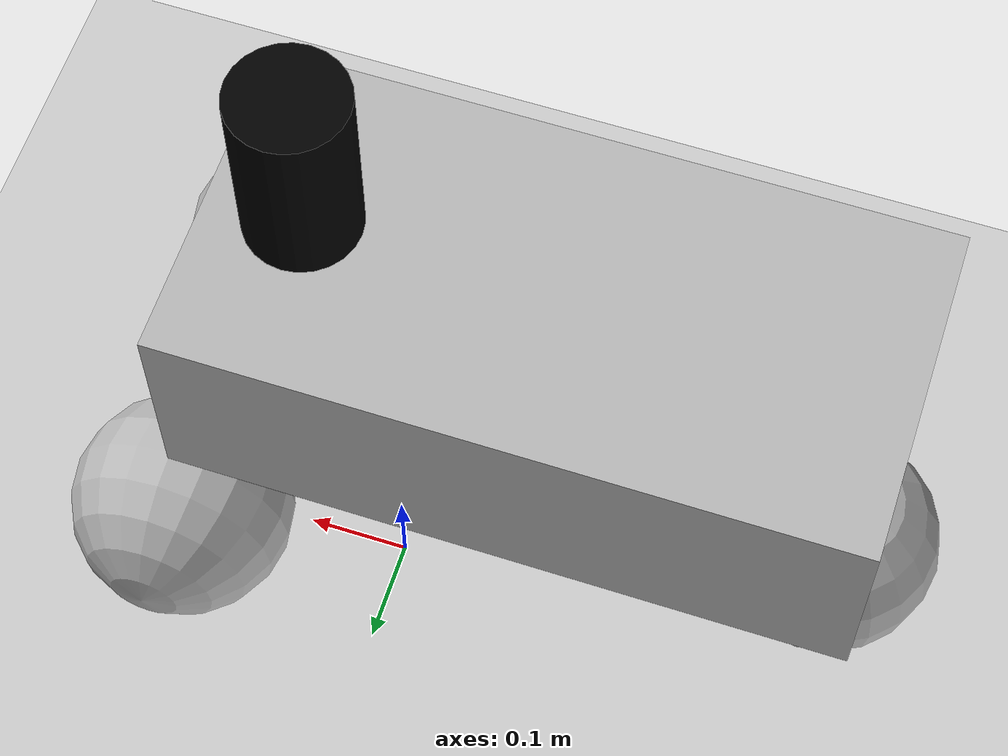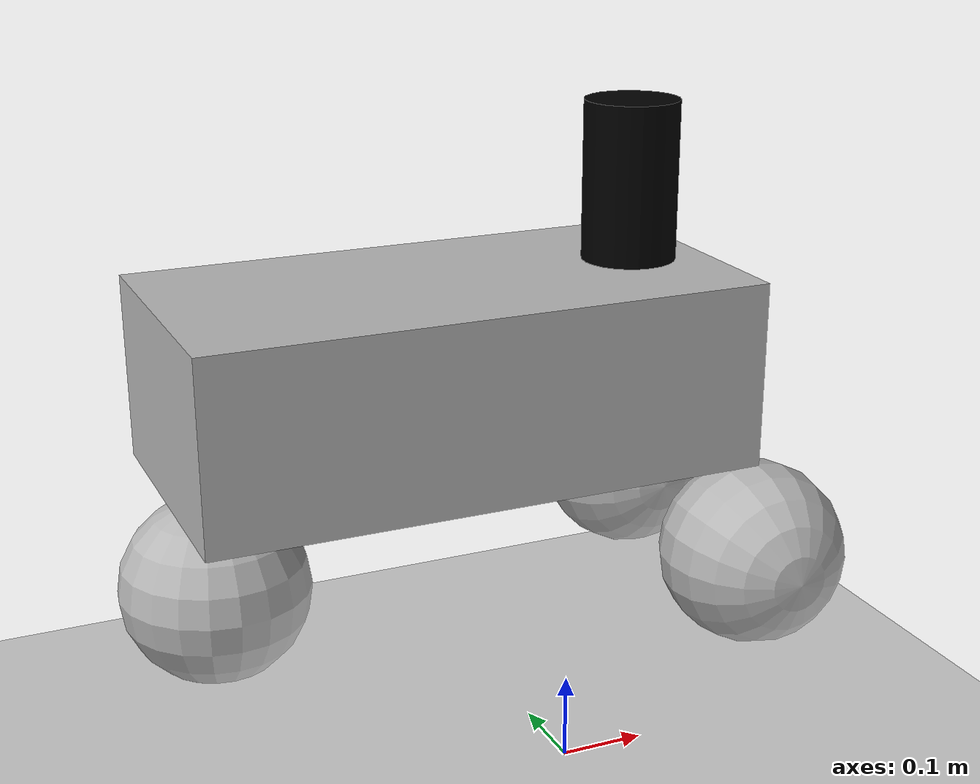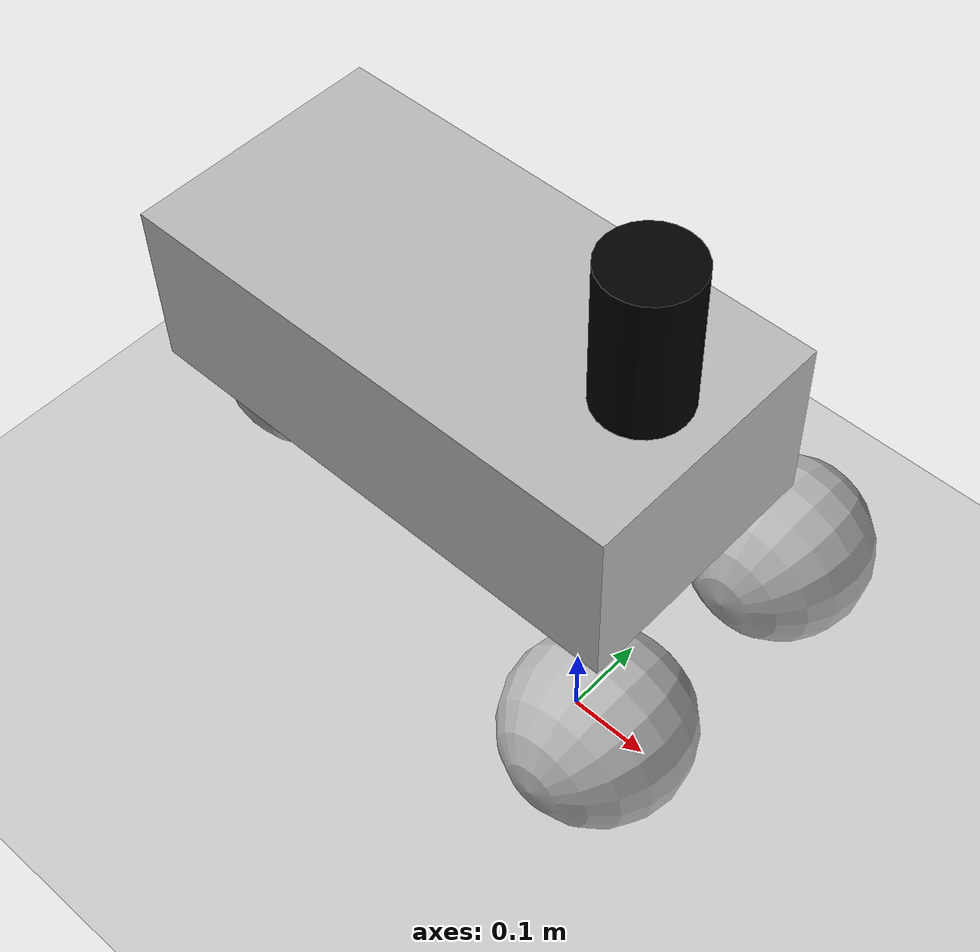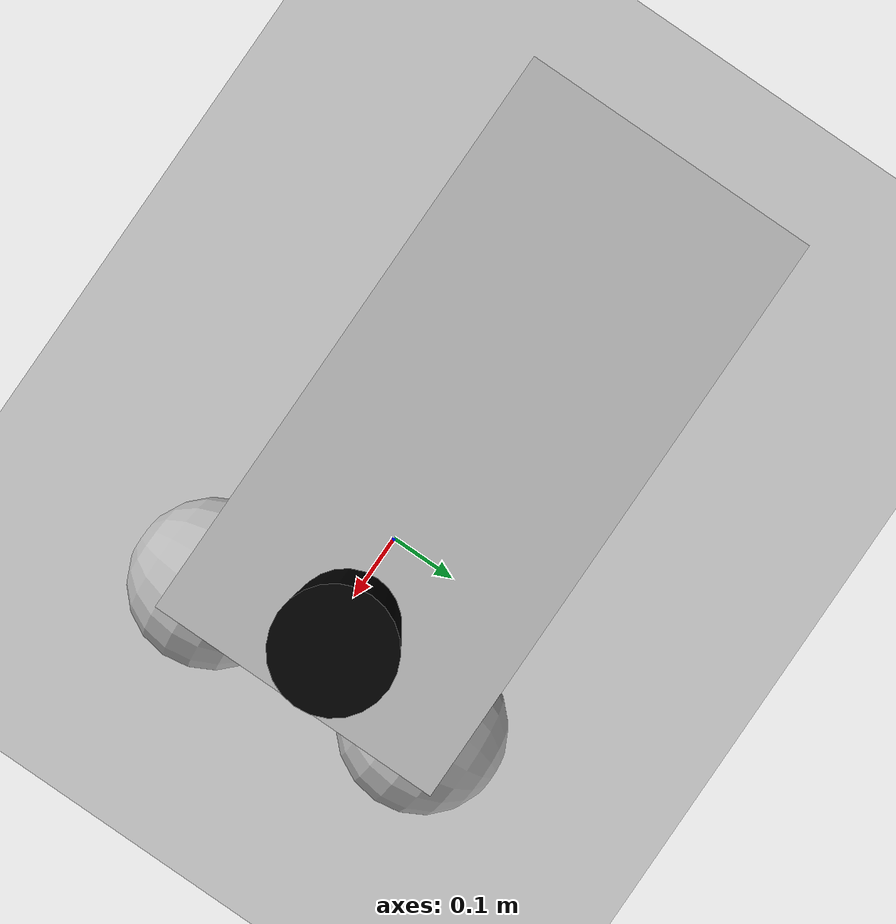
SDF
<?xml version="1.0"?>
<sdf version="1.6">
  <world name="default">

    <include>
      <uri>model://ground_plane</uri>
    </include>

    <include>
      <uri>model://sun</uri>
    </include>

    <model name='vehicle'>
      <link name="lidar_link">
        <inertial>
          <pose>0.065 0 0.355 0 0 0</pose>
          <inertia>
            <ixx>0.001</ixx>
            <ixy>0.000</ixy>
            <ixz>0.000</ixz>
            <iyy>0.001</iyy>
            <iyz>0.000</iyz>
            <izz>0.001</izz>
          </inertia>
          <mass>0.114</mass>
        </inertial>

        <collision name="lidar_collision">
          <pose>0.065 0 0.355 0 0 0</pose>
          <geometry>
            <cylinder>
              <radius>0.0508</radius>
              <length>0.18</length>
            </cylinder>
          </geometry>
        </collision>

        <visual name="lidar_visual">
          <pose>0.065 0 0.355 0 0 0</pose>
          <geometry>
            <cylinder>
              <radius>0.0508</radius>
              <length>0.18</length>
            </cylinder>
          </geometry>
          <material>
            <ambient>0.0 0.0 0.0 1.0</ambient>
            <diffuse>0.0 0.0 0.0 1.0</diffuse>
            <specular>0.0 0.0 0.0 1.0</specular>
            <emissive>0.0 0.0 0.0 1.0</emissive>
          </material>
        </visual>

        <sensor name="lidar" type="ray">
          <pose>0.065 0 0.3215 0 0 0</pose>
          <always_on>true</always_on>
          <visualize>true</visualize>
          <update_rate>5</update_rate>
          <ray>
            <scan>
              <horizontal>
                <samples>360</samples>
                <resolution>1.00000</resolution>
                <min_angle>0.000000</min_angle>
                <max_angle>6.280000</max_angle>
              </horizontal>
            </scan>
            <range>
              <min>0.120000</min>
              <max>3.5</max>
              <resolution>0.015000</resolution>
            </range>
            <noise>
              <type>gaussian</type>
              <mean>0.0</mean>
              <stddev>0.01</stddev>
            </noise>
          </ray>
          <plugin name="scan" filename="libgazebo_ros_ray_sensor.so">
            <ros>
              <remapping>~/out:=scan</remapping>
            </ros>
            <output_type>sensor_msgs/LaserScan</output_type>
            <frame_name>laser</frame_name>
          </plugin>
        </sensor>
      </link>

      <pose>0 0 0.325 0 -0 0</pose>

      <link name='base_link'>
        <pose>-0.151427 -0 0.175 0 -0 0</pose>
        <inertial>
          <mass>1.14395</mass>
          <inertia>
            <ixx>0.126164</ixx>
            <ixy>0</ixy>
            <ixz>0</ixz>
            <iyy>0.416519</iyy>
            <iyz>0</iyz>
            <izz>0.481014</izz>
          </inertia>
        </inertial>
        <visual name='visual'>
          <geometry>
            <box>
              <size>0.6 0.3 0.2</size>
            </box>
          </geometry>
        </visual>
        <collision name='collision'>
          <geometry>
            <box>
              <size>0.6 0.3 0.2</size>
            </box>
          </geometry>
        </collision>
      </link>

      <link name='left_wheel'>
        <pose>0.1482 0.145029 -0.025 -1.5707 0 0</pose>
        <inertial>
          <mass>2</mass>
          <inertia>
            <ixx>0.145833</ixx>
            <ixy>0</ixy>
            <ixz>0</ixz>
            <iyy>0.145833</iyy>
            <iyz>0</iyz>
            <izz>0.125</izz>
          </inertia>
        </inertial>
        <visual name='visual'>
          <geometry>
            <sphere>
              <radius>0.1</radius>
            </sphere>
          </geometry>
        </visual>
        <collision name='collision'>
          <geometry>
            <sphere>
              <radius>0.1</radius>
            </sphere>
          </geometry>
          <surface>
            <friction>
              <ode>
                <mu>1</mu>
                <mu2>1</mu2>
                <slip1>0</slip1>
                <slip2>0</slip2>
              </ode>
            </friction>
            <contact>
              <ode>
                <soft_cfm>0</soft_cfm>
                <soft_erp>0.2</soft_erp>
                <kp>1e+13</kp>
                <kd>1</kd>
                <max_vel>0.01</max_vel>
                <min_depth>0.01</min_depth>
              </ode>
            </contact>
          </surface>
        </collision>
      </link>

      <link name='right_wheel'>
        <pose>0.1482 -0.145029 -0.025 -1.5707 0 0</pose>
        <inertial>
          <mass>2</mass>
          <inertia>
            <ixx>0.145833</ixx>
            <ixy>0</ixy>
            <ixz>0</ixz>
            <iyy>0.145833</iyy>
            <iyz>0</iyz>
            <izz>0.125</izz>
          </inertia>
        </inertial>
        <visual name='visual'>
          <geometry>
            <sphere>
              <radius>0.1</radius>
            </sphere>
          </geometry>
        </visual>
        <collision name='collision'>
          <geometry>
            <sphere>
              <radius>0.1</radius>
            </sphere>
          </geometry>
          <surface>
            <friction>
              <ode>
                <mu>1</mu>
                <mu2>1</mu2>
                <slip1>0</slip1>
                <slip2>0</slip2>
              </ode>
            </friction>
            <contact>
              <ode>
                <soft_cfm>0</soft_cfm>
                <soft_erp>0.2</soft_erp>
                <kp>1e+13</kp>
                <kd>1</kd>
                <max_vel>0.01</max_vel>
                <min_depth>0.01</min_depth>
              </ode>
            </contact>
          </surface>
        </collision>
      </link>

      <link name='caster'>
        <pose>-0.407138 -0 -0.025 0 -0 0</pose>
        <inertial>
          <mass>1</mass>
          <inertia>
            <ixx>0.1</ixx>
            <ixy>0</ixy>
            <ixz>0</ixz>
            <iyy>0.1</iyy>
            <iyz>0</iyz>
            <izz>0.1</izz>
          </inertia>
        </inertial>
        <visual name='visual'>
          <geometry>
            <sphere>
              <radius>0.1</radius>
            </sphere>
          </geometry>
        </visual>
        <collision name='collision'>
          <geometry>
            <sphere>
              <radius>0.1</radius>
            </sphere>
          </geometry>
        </collision>
      </link>

      <joint name='lidar_joint' type='fixed'>
        <parent>base_link</parent>
        <child>lidar_link</child>
      </joint>

      <joint name='left_wheel_joint' type='revolute'>
        <parent>base_link</parent>
        <child>left_wheel</child>
        <axis>
          <xyz>0 0 1</xyz>
          <limit>
            <lower>-1.79769e+308</lower>
            <upper>1.79769e+308</upper>
          </limit>
        </axis>
      </joint>

      <joint name='right_wheel_joint' type='revolute'>
        <parent>base_link</parent>
        <child>right_wheel</child>
        <axis>
          <xyz>0 0 1</xyz>
          <limit>
            <lower>-1.79769e+308</lower>
            <upper>1.79769e+308</upper>
          </limit>
        </axis>
      </joint>

      <joint name='caster_wheel' type='ball'>
        <parent>base_link</parent>
        <child>caster</child>
      </joint>

      <plugin name='diff_drive' filename='libgazebo_ros_diff_drive.so'>

        <ros>
          <namespace>/simulation</namespace>
          <remapping>cmd_vel:=cmd_vel</remapping>
          <remapping>odom:=odom</remapping>
        </ros>

        <!-- wheels -->
        <left_joint>left_wheel_joint</left_joint>
        <right_joint>right_wheel_joint</right_joint>

        <!-- kinematics -->
        <wheel_separation>0.29</wheel_separation>
        <wheel_diameter>0.2</wheel_diameter>

        <!-- limits -->
        <max_wheel_torque>20</max_wheel_torque>
        <max_wheel_acceleration>1.0</max_wheel_acceleration>

        <!-- output -->
        <publish_odom>true</publish_odom>
        <publish_odom_tf>true</publish_odom_tf>
        <publish_wheel_tf>true</publish_wheel_tf>

        <odometry_frame>odom</odometry_frame>
        <robot_base_frame>base_link</robot_base_frame>

      </plugin>

    </model>

  </world>
</sdf>
